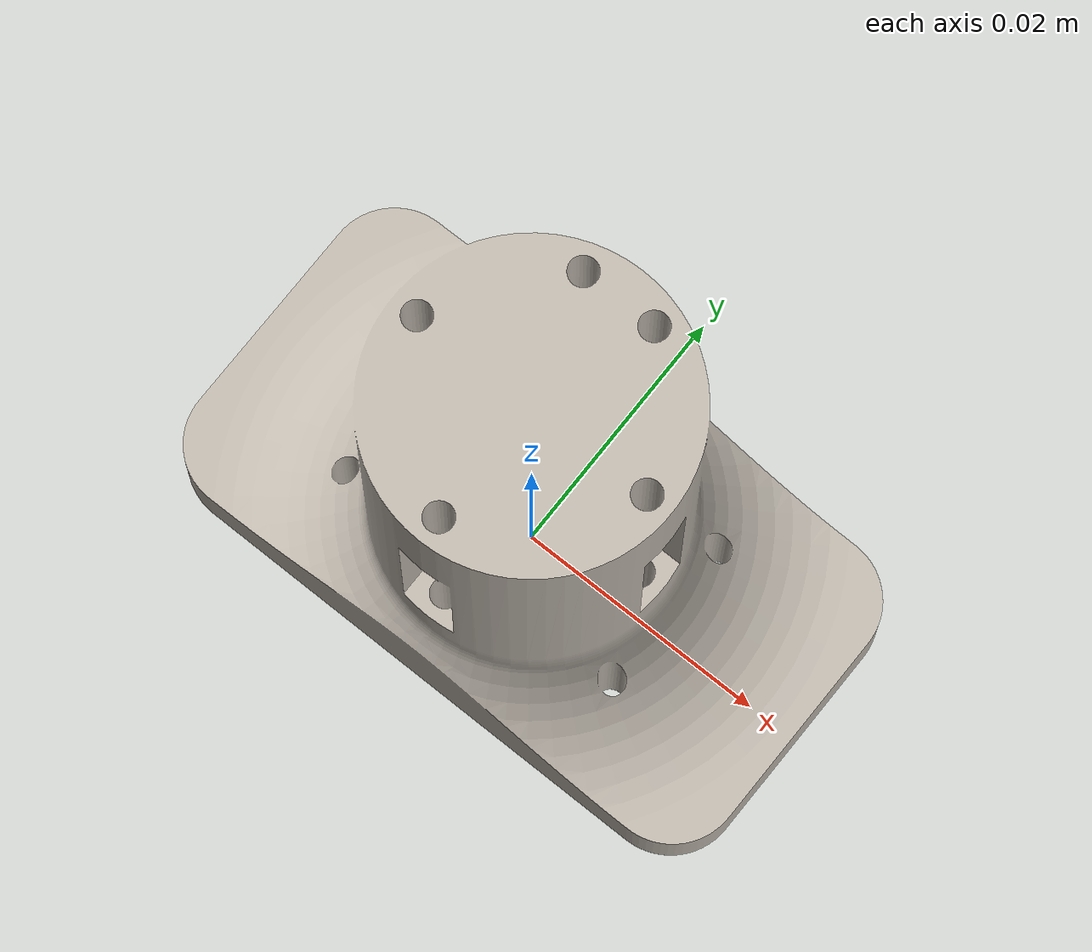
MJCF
<?xml version="1.0"?>
<mujoco model="dclaw3xh_valve3_default">
  <include file="/scenes/scene_default.xml"/>
  <include file="/robot/assets/dependencies_3xh_position.xml"/>

  <size njmax="8000" nconmax="4000"/>

  <worldbody>
    <camera name="plane"        mode= "fixed" euler="1.57 0 0" pos="0 -0.1 0"/>
    <camera name="front"        mode= "fixed" euler="1.57 0 0" pos="0 -0.1 0.02786"/>
    <camera name="front_left"   mode= "fixed" euler="1.57 0 0" pos="-0.02409 -0.1 0.02786"/>
    <camera name="front_right"  mode= "fixed" euler="1.57 0 0" pos="0.02409 -0.1 0.02786"/>
    <camera name="side_left"    mode= "fixed" euler="0  1.57  1.57" pos=" 0.1  0 0.02786"/>
    <camera name="side_right"   mode= "fixed" euler="0 -1.57 -1.57" pos="-0.1  0 0.02786"/>

    <body name="mount" pos="0 0 0" euler="0 0 0">
      <include file="./robot/assets/FFL12_tip.xml"/>
    </body>

  </worldbody>
</mujoco>

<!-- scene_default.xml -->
<mujocoinclude>
  <asset>
    <texture name="skybox" type="skybox" builtin="gradient" rgb1=".08 .09 .10" rgb2="0 0 0" width="800" height="800" mark="random" markrgb=".8 .8 .8"/>

    <!-- Finger 1 -->
    <texture name="FFbase_xh28_tex"                type="2d" file="./pattern/pattern_default_crop.png"/>
    <texture name="FF10_xh28_tex"                  type="2d" file="./pattern/pattern_default_crop.png"/>
    <texture name="FF10_metal_clamping_tex"        type="2d" file="./pattern/pattern_default_crop.png"/>
    <texture name="FF10_metal_clamping_small_tex"  type="2d" file="./pattern/pattern_default_crop.png"/>
    <texture name="FFL11_xh28_tex"                 type="2d" file="./pattern/pattern_default_crop.png"/>
    <texture name="FFL11_metal_clamping_tex"       type="2d" file="./pattern/pattern_default_crop.png"/>
    <texture name="FFL11_metal_clamping_small_tex" type="2d" file="./pattern/pattern_default_crop.png"/>
    <texture name="FFL11_plastic_finger_tex"       type="2d" file="./pattern/pattern_default_crop.png"/>
    <texture name="FFL12_metal_clamping_tex"       type="2d" file="./pattern/pattern_default_crop.png"/>
    <texture name="FFL12_plastic_finger_tex"       type="2d" file="./pattern/pattern_default_crop.png"/>
    <material name="FFbase_xh28_mat"                shininess="0.03" specular="0.75" texture="FFbase_xh28_tex"></material>
    <material name="FF10_xh28_mat"                  shininess="0.03" specular="0.75" texture="FF10_xh28_tex"></material>
    <material name="FF10_metal_clamping_mat"        shininess="0.03" specular="0.75" texture="FF10_metal_clamping_tex"></material>
    <material name="FF10_metal_clamping_small_mat"  shininess="0.03" specular="0.75" texture="FF10_metal_clamping_small_tex"></material>
    <material name="FFL11_xh28_mat"                 shininess="0.03" specular="0.75" texture="FFL11_xh28_tex"></material>
    <material name="FFL11_metal_clamping_mat"       shininess="0.03" specular="0.75" texture="FFL11_metal_clamping_tex"></material>
    <material name="FFL11_metal_clamping_small_mat" shininess="0.03" specular="0.75" texture="FFL11_metal_clamping_small_tex"></material>
    <material name="FFL11_plastic_finger_mat"       shininess="0.03" specular="0.75" texture="FFL11_plastic_finger_tex"></material>
    <material name="FFL12_metal_clamping_mat"       shininess="0.03" specular="0.75" texture="FFL12_metal_clamping_tex"></material>
    <material name="FFL12_plastic_finger_mat"       shininess="0.03" specular="0.75" texture="FFL12_plastic_finger_tex"></material>

    <!-- Finger 2 -->
    <texture name="MFbase_xh28_tex"                type="2d" file="./pattern/pattern_default_crop.png"/>
    <texture name="MF20_xh28_tex"                  type="2d" file="./pattern/pattern_default_crop.png"/>
    <texture name="MF20_metal_clamping_tex"        type="2d" file="./pattern/pattern_default_crop.png"/>
    <texture name="MF20_metal_clamping_small_tex"  type="2d" file="./pattern/pattern_default_crop.png"/>
    <texture name="MFL21_xh28_tex"                 type="2d" file="./pattern/pattern_default_crop.png"/>
    <texture name="MFL21_metal_clamping_tex"       type="2d" file="./pattern/pattern_default_crop.png"/>
    <texture name="MFL21_metal_clamping_small_tex" type="2d" file="./pattern/pattern_default_crop.png"/>
    <texture name="MFL21_plastic_finger_tex"       type="2d" file="./pattern/pattern_default_crop.png"/>
    <texture name="MFL22_metal_clamping_tex"       type="2d" file="./pattern/pattern_default_crop.png"/>
    <texture name="MFL22_plastic_finger_tex"       type="2d" file="./pattern/pattern_default_crop.png"/>
    <material name="MFbase_xh28_mat"                shininess="0.03" specular="0.75" texture="MFbase_xh28_tex"></material>
    <material name="MF20_xh28_mat"                  shininess="0.03" specular="0.75" texture="MF20_xh28_tex"></material>
    <material name="MF20_metal_clamping_mat"        shininess="0.03" specular="0.75" texture="MF20_metal_clamping_tex"></material>
    <material name="MF20_metal_clamping_small_mat"  shininess="0.03" specular="0.75" texture="MF20_metal_clamping_small_tex"></material>
    <material name="MFL21_xh28_mat"                 shininess="0.03" specular="0.75" texture="MFL21_xh28_tex"></material>
    <material name="MFL21_metal_clamping_mat"       shininess="0.03" specular="0.75" texture="MFL21_metal_clamping_tex"></material>
    <material name="MFL21_metal_clamping_small_mat" shininess="0.03" specular="0.75" texture="MFL21_metal_clamping_small_tex"></material>
    <material name="MFL21_plastic_finger_mat"       shininess="0.03" specular="0.75" texture="MFL21_plastic_finger_tex"></material>
    <material name="MFL22_metal_clamping_mat"       shininess="0.03" specular="0.75" texture="MFL22_metal_clamping_tex"></material>
    <material name="MFL22_plastic_finger_mat"       shininess="0.03" specular="0.75" texture="MFL22_plastic_finger_tex"></material>

    <!-- Finger 3 -->
    <texture name="THbase_xh28_tex"                type="2d" file="./pattern/pattern_default_crop.png"/>
    <texture name="TH30_xh28_tex"                  type="2d" file="./pattern/pattern_default_crop.png"/>
    <texture name="TH30_metal_clamping_tex"        type="2d" file="./pattern/pattern_default_crop.png"/>
    <texture name="TH30_metal_clamping_small_tex"  type="2d" file="./pattern/pattern_default_crop.png"/>
    <texture name="THL31_xh28_tex"                 type="2d" file="./pattern/pattern_default_crop.png"/>
    <texture name="THL31_metal_clamping_tex"       type="2d" file="./pattern/pattern_default_crop.png"/>
    <texture name="THL31_metal_clamping_small_tex" type="2d" file="./pattern/pattern_default_crop.png"/>
    <texture name="THL31_plastic_finger_tex"       type="2d" file="./pattern/pattern_default_crop.png"/>
    <texture name="THL32_metal_clamping_tex"       type="2d" file="./pattern/pattern_default_crop.png"/>
    <texture name="THL32_plastic_finger_tex"       type="2d" file="./pattern/pattern_default_crop.png"/>
    <material name="THbase_xh28_mat"                shininess="0.03" specular="0.75" texture="THbase_xh28_tex"></material>
    <material name="TH30_xh28_mat"                  shininess="0.03" specular="0.75" texture="TH30_xh28_tex"></material>
    <material name="TH30_metal_clamping_mat"        shininess="0.03" specular="0.75" texture="TH30_metal_clamping_tex"></material>
    <material name="TH30_metal_clamping_small_mat"  shininess="0.03" specular="0.75" texture="TH30_metal_clamping_small_tex"></material>
    <material name="THL31_xh28_mat"                 shininess="0.03" specular="0.75" texture="THL31_xh28_tex"></material>
    <material name="THL31_metal_clamping_mat"       shininess="0.03" specular="0.75" texture="THL31_metal_clamping_tex"></material>
    <material name="THL31_metal_clamping_small_mat" shininess="0.03" specular="0.75" texture="THL31_metal_clamping_small_tex"></material>
    <material name="THL31_plastic_finger_mat"       shininess="0.03" specular="0.75" texture="THL31_plastic_finger_tex"></material>
    <material name="THL32_metal_clamping_mat"       shininess="0.03" specular="0.75" texture="THL32_metal_clamping_tex"></material>
    <material name="THL32_plastic_finger_mat"       shininess="0.03" specular="0.75" texture="THL32_plastic_finger_tex"></material>

    <!-- xh28 -->
    <texture name="xh28_tex" type="2d" file="./pattern/pattern_default_crop.png"/>
    <material name="xh28_mat" shininess="0.03" specular="0.75" texture="xh28_tex"></material>

    <!-- acrylic_circle -->
    <texture name="acrylic_circle_tex" type="2d" file="./pattern/pattern_default_crop.png"/>
    <material name="acrylic_circle_mat" shininess="0.03" specular="0.75" texture="acrylic_circle_tex"></material>

    <!-- floor -->
    <texture name="floor_tex" type="2d" file="./pattern/gray3_resized.png"/>
    <material name="floor_mat" shininess="0.03" specular="0.75" texture="floor_tex"></material>

    <!-- mount -->
    <texture name="mount_tex" type="2d" file="./pattern/pattern_default_crop.png"/>
    <material name="mount_mat" shininess="0.03" specular="0.75" texture="mount_tex"></material>

    <!-- valve_3 -->
    <texture name="valve_3_tex" type="2d" file="./pattern/pattern_default_crop.png"/>
    <material name="valve_3_mat" shininess="0.03" specular="0.75" texture="valve_3_tex"></material>
  </asset>

  <visual>
    <quality shadowsize="1024" offsamples="4"/>
  </visual>

  <worldbody>

    <light name="light_top_1" directional="true" diffuse=".3 .3 .3" specular="0.3 0.3 0.3" pos="-0.5 -0.5 1.0" active="false" dir="0.5 0.5 -1"/>
    <light name="light_top_2" directional="true" diffuse=".3 .3 .3" specular="0.3 0.3 0.3" pos="0.0 -0.5 1.0"  active="false" dir="0.0 0.5 -1"/>
    <light name="light_top_3" directional="true" diffuse=".3 .3 .3" specular="0.3 0.3 0.3" pos="0.5 -0.5 1.0"  active="true" dir="-0.5 0.5 -1"/>
    <light name="light_top_4" directional="true" diffuse=".3 .3 .3" specular="0.3 0.3 0.3" pos="-0.5 0.0 1.0"  active="false" dir="0.5 0 -1"/>
    <light name="light_top_5" directional="true" diffuse=".3 .3 .3" specular="0.3 0.3 0.3" pos="0.0 0.0 1.0"   active="false" dir="0 0 -1"/>
    <light name="light_top_6" directional="true" diffuse=".3 .3 .3" specular="0.3 0.3 0.3" pos="0.5 0.0 1.0"   active="false" dir="-0.5 0 -1"/>
    <light name="light_top_7" directional="true" diffuse=".3 .3 .3" specular="0.3 0.3 0.3" pos="-0.5 0.5 1.0"  active="true" dir=" 0.5 -0.5 -1"/>
    <light name="light_top_8" directional="true" diffuse=".3 .3 .3" specular="0.3 0.3 0.3" pos="0.0 0.5 1.0"   active="false" dir=" 0.0 -0.5 -1"/>
    <light name="light_top_9" directional="true" diffuse=".3 .3 .3" specular="0.3 0.3 0.3" pos="0.5 0.5 1.0"   active="false" dir="-0.5 -0.5 -1"/>

    <light name="light_side_1" directional="true" diffuse=".3 .3 .3" specular="0.3 0.3 0.3" pos="0.0 0.5 0.2"   active="false" dir=" 0.0 -0.5 0.0"/>
    <light name="light_side_2" directional="true" diffuse=".3 .3 .3" specular="0.3 0.3 0.3" pos="0.0 -0.5 0.2"  active="false" dir=" 0.0 0.5 0.0"/>
    <light name="light_side_3" directional="true" diffuse=".3 .3 .3" specular="0.3 0.3 0.3" pos="0.5 0.0 0.2"   active="false" dir="-0.5 0.0 0.0"/>
    <light name="light_side_4" directional="true" diffuse=".3 .3 .3" specular="0.3 0.3 0.3" pos="-0.5 0.0 0.2"  active="false" dir=" 0.5 0.0 0.0"/>
    <light name="light_side_5" directional="true" diffuse=".3 .3 .3" specular="0.3 0.3 0.3" pos="-0.5 0.5 0.2"  active="false" dir=" 0.5 -0.5 0.0"/>
    <light name="light_side_6" directional="true" diffuse=".3 .3 .3" specular="0.3 0.3 0.3" pos=" 0.5 -0.5 0.2" active="false" dir="-0.5 0.5 0.0"/>
    <light name="light_side_7" directional="true" diffuse=".3 .3 .3" specular="0.3 0.3 0.3" pos="-0.5 -0.5 0.2" active="false" dir=" 0.5 0.5 0.0"/>
    <light name="light_side_8" directional="true" diffuse=".3 .3 .3" specular="0.3 0.3 0.3" pos=" 0.5  0.5 0.2" active="false" dir="-0.5 -0.5 0.0"/>

    <site name="xaxis" pos=".5 0 0" size=".005 .5" type="capsule" rgba="1 0 0 .25" euler="0 1.57 0" group="3"/>
    <site name="yaxis" pos="0 .5 0" size=".005 .5" type="capsule" rgba="0 1 0 .25" euler="1.57 0 0" group="3"/>
  </worldbody>
</mujocoinclude>

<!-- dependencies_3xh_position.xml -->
<mujocoinclude>
  <compiler angle="radian" inertiafromgeom="auto" inertiagrouprange="3 5" />
  <option timestep="0.0025" iterations="50" tolerance="1e-10" solver="Newton" jacobian="dense" cone="elliptic"/>
  <asset>
    <mesh name="xh28"                 file="./robot/meshes/xh_base_high_poly.stl"            scale=".001 .001 .001"/>
    <mesh name="acrylic_circle"       file="./robot/meshes/acrylic_circle.stl"               scale=".1 .1 .1"/>
    <mesh name="plastic_finger"       file="./robot/meshes/xh_finger_tip.stl"                scale=".001 .001 .001"/>
    <mesh name="finger_for_optoforce" file="./robot/meshes/finger_for_optoforce.stl"         scale=".001 .001 .001"/>
    <mesh name="optoforce_sensor"     file="./robot/meshes/OPTOFORCE_OMD-20-SE-40N.stl"      scale=".001 .001 .001"/>
    <mesh name="metal_clamping"       file="./robot/meshes/xh_clamping_high_poly.stl"        scale=".001 .001 .001"/>
    <mesh name="metal_clamping_small" file="./robot/meshes/xh_clamping_small_high_poly.stl"  scale=".001 .001 .001"/>
    <mesh name="plastic_top"          file="./robot/meshes/xh_white_top_high_poly.stl"       scale=".001 .001 .001"/>
    <mesh name="xh28_hull"            file="./robot/meshes/xh_base_hull.stl"                 scale=".001 .001 .001"/>
    <mesh name="xh28_hull_top"        file="./robot/meshes/xh_base_hull_top.stl"             scale=".001 .001 .001"/>
  </asset>
  <default>
    <default class="dclaw3xh">
      <joint limited="true" damping=".1" armature="0.001"/>
      <geom contype="0"   conaffinity="0" condim="4" group="1" margin="0.0005" material="metal_black" type="mesh"/>
      <motor ctrlrange="-1.57 1.57" ctrllimited="true"/>
      <site group="1"/>
      <default class="overlay">
        <geom contype="0" conaffinity="0" group="3" type="mesh" material="greenish"/>
        <joint damping="100" frictionloss="100" armature="0"/>
        <site group="3"/>
      </default>
      <default class="phy_metal">
        <geom contype="1" conaffinity="1" group="4" type="mesh" rgba="0.0 0.0 1.0 .3"/>
        <site group="4"/>
      </default>
      <default class="phy_plastic">
        <geom contype="1" conaffinity="1" group="4" type="mesh" rgba="0.0 0.0 1.0 .3" friction=".2 0.005 0.0001"/>
        <site group="4"/>
      </default>

      <default class="phy_optoforce">
          <geom contype="1" conaffinity="1" group="4" type="sphere" size="0.011" mass=".009" pos="0 0 0" rgba="0 0 1 .3" friction=".2 0.005 0.0001"/>
          <site group="4"/>
      </default>
      <default class="site_optoforce">
          <site type="sphere" size="0.011" rgba="1 0 1 .5" pos="0 0 0" group="5"/>
      </default>

    </default>
  </default>
  <asset>
    <material name="metal_black" specular="1" shininess="1" rgba="0.2 0.2 0.2 1.0"/>
    <material name="metal_grey" specular="1" shininess="1" rgba="0.5 0.5 0.5 1.0"/>
    <material name="plastic" specular="0.3" shininess="0" rgba="1 1 1 1"/>
    <material name="acrylic" specular="0.3" shininess="0" rgba="1 1 1 .2"/>
    <material name="greenish" specular="0.0" shininess="0" rgba="0.3 1 0.3 1"/>
  </asset>

</mujocoinclude>

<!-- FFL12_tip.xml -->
<mujocoinclude>
  <body name="FFL12_tip" pos="0 0 0" childclass="dclaw3xh">
      <!-- visual -->
      <geom name="FFL12_plastic_finger" mesh="finger_for_optoforce" pos="0 0 0" euler="0 0 1.57" material="FFL12_plastic_finger_mat"/>

      <!-- phusical -->
      <geom class="phy_plastic" type="box"       pos="0 0 0.00254"  size="0.0241 0.014 0.00254"  mass=".007"/>
      <geom class="phy_plastic" type="cylinder"  pos="0 0 0.02332"  size="0.0115 0.01732"      mass=".009"/>

      <body name="FFL12_optoforce" pos="0 0 0.073">
          <geom class="phy_optoforce"  name="FFL12_phy_optoforce"/>
          <site class="site_optoforce" name="FFL12_site_optoforce"/>
      </body>
  </body>
</mujocoinclude>
